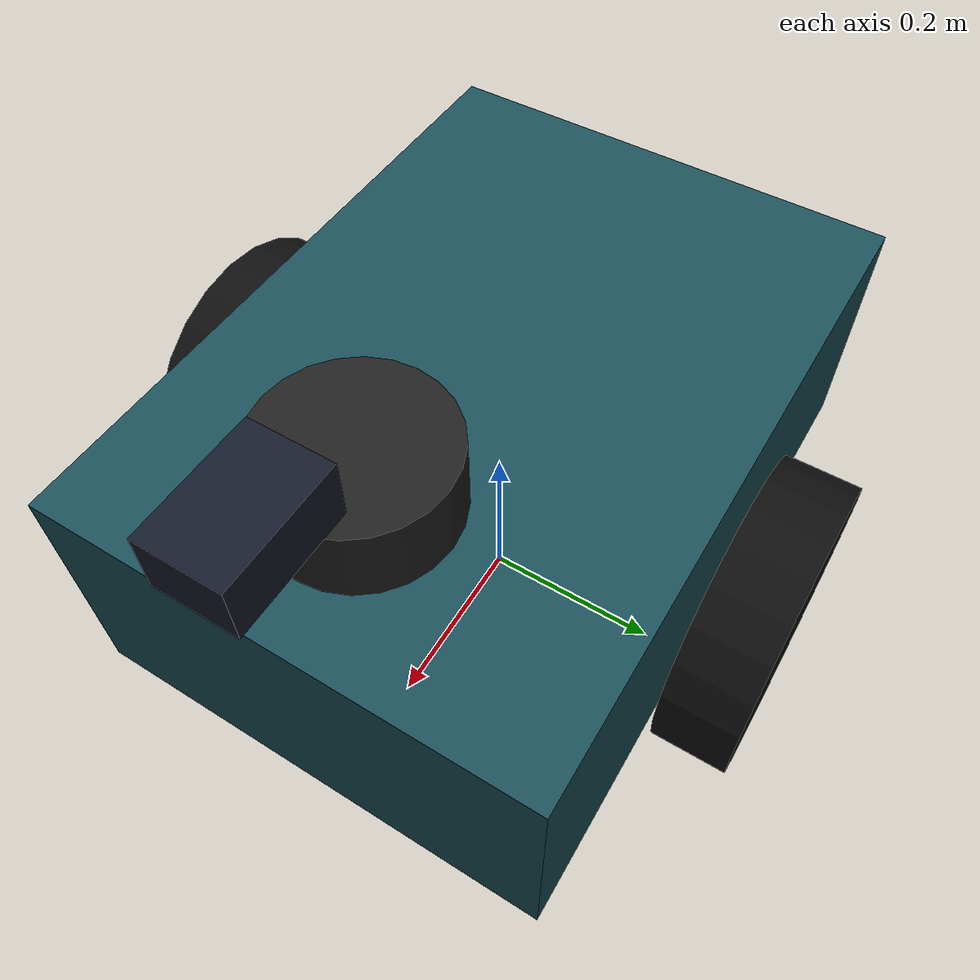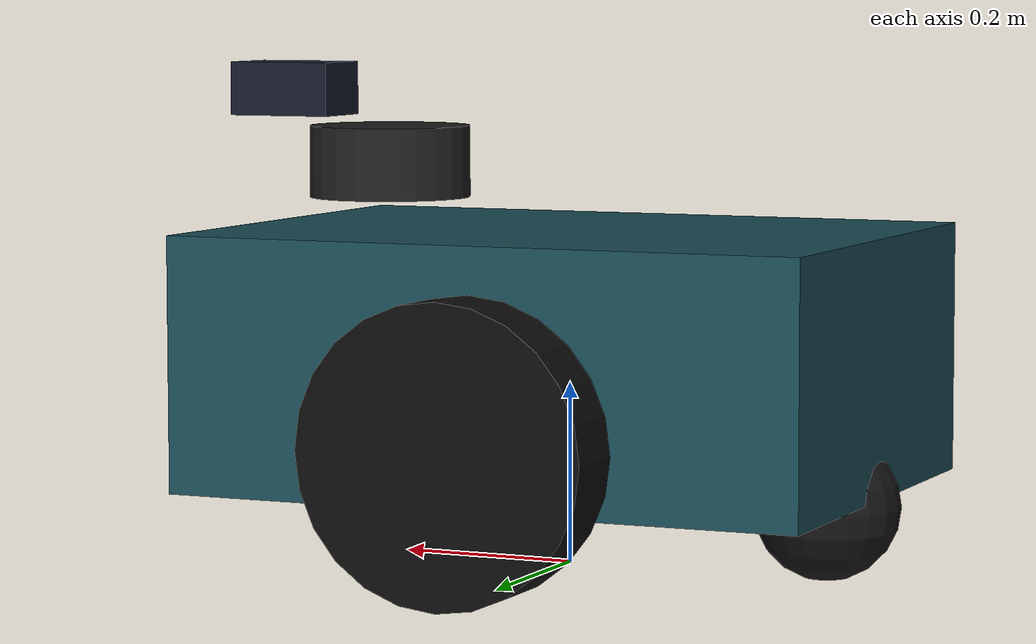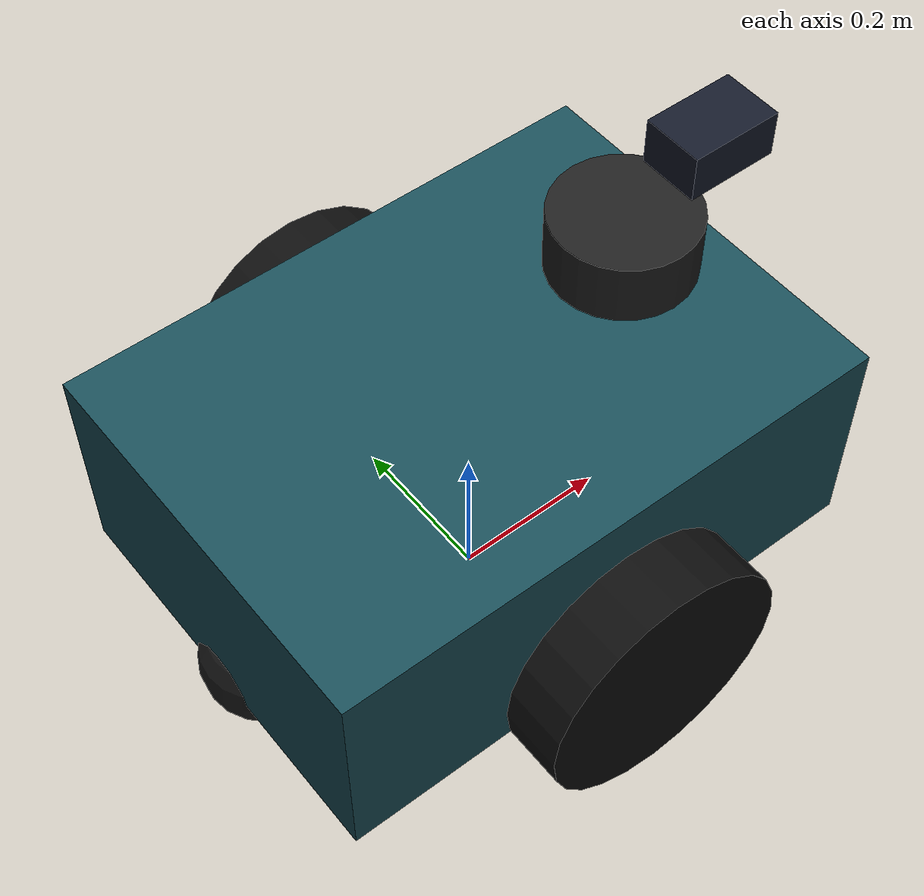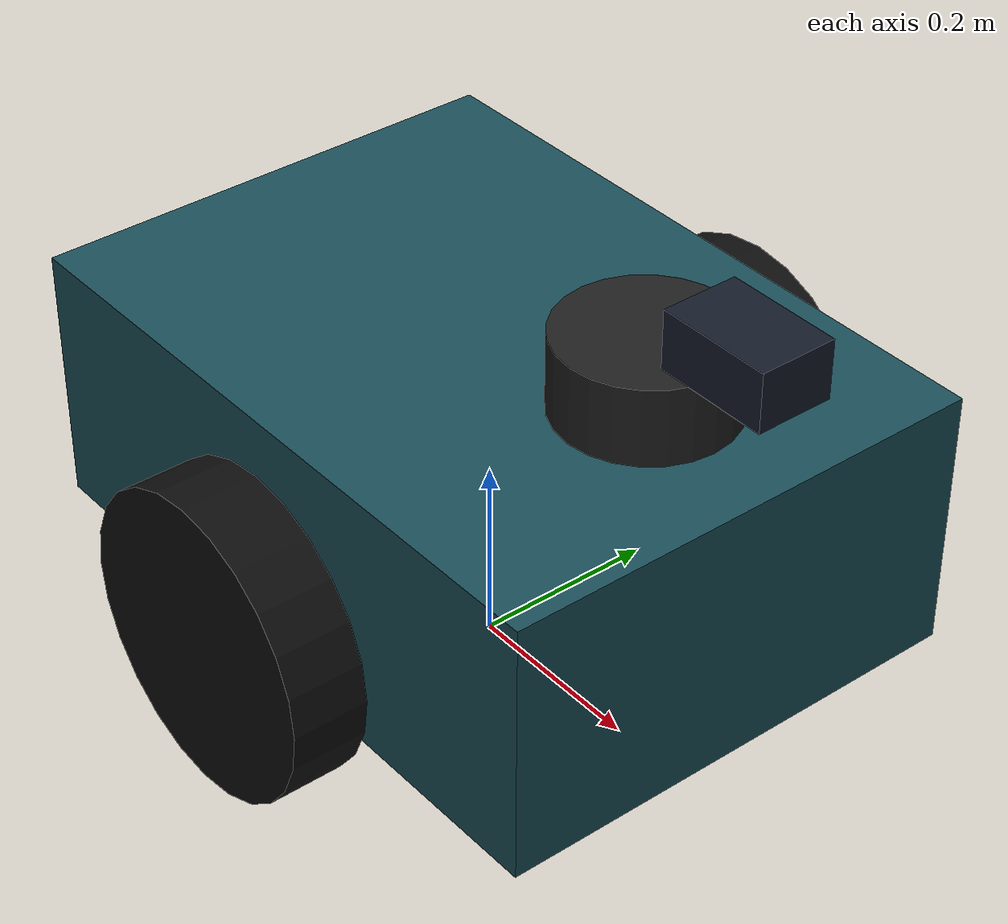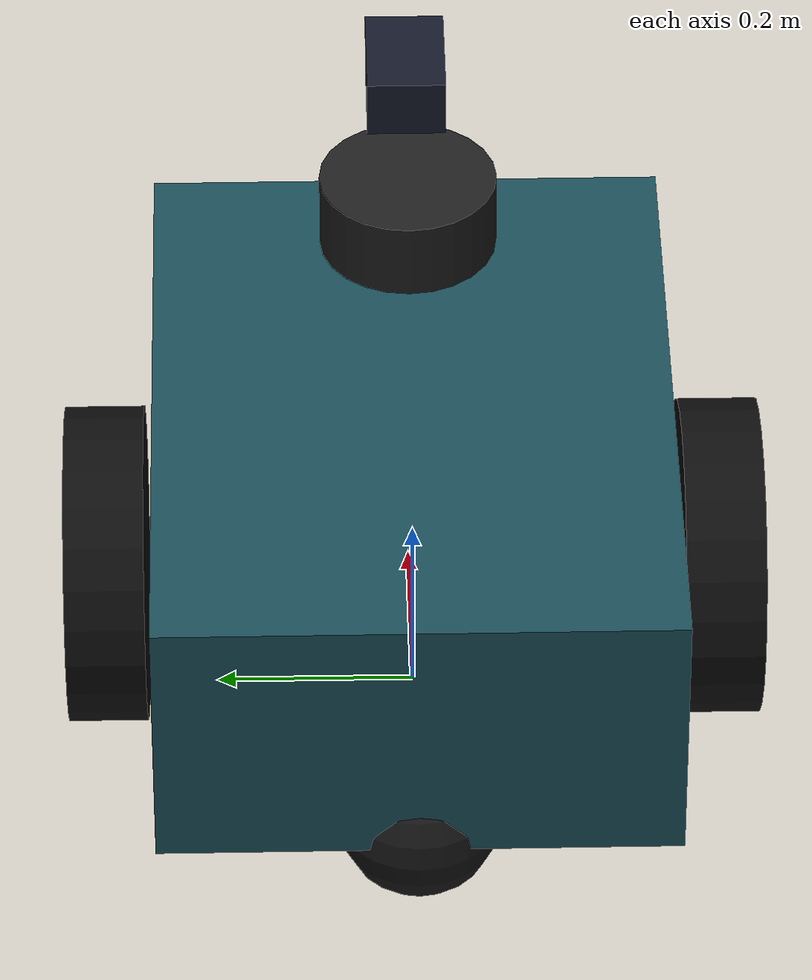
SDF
<?xml version="1.0"?>
<sdf version="1.10">
  <model name="reliability_amr">
    <self_collide>false</self_collide>

    <link name="base_link">
      <pose>0 0 0.23 0 0 0</pose>
      <inertial>
        <mass>18.0</mass>
        <inertia>
          <ixx>0.42</ixx>
          <ixy>0.0</ixy>
          <ixz>0.0</ixz>
          <iyy>0.56</iyy>
          <iyz>0.0</iyz>
          <izz>0.78</izz>
        </inertia>
      </inertial>
      <collision name="base_collision">
        <geometry>
          <box>
            <size>0.72 0.52 0.28</size>
          </box>
        </geometry>
      </collision>
      <visual name="base_visual">
        <geometry>
          <box>
            <size>0.72 0.52 0.28</size>
          </box>
        </geometry>
        <material>
          <ambient>0.10 0.16 0.18 1</ambient>
          <diffuse>0.10 0.30 0.34 1</diffuse>
          <specular>0.20 0.20 0.20 1</specular>
        </material>
      </visual>
    </link>

    <link name="left_wheel">
      <pose>0 0.31 0.16 -1.57079632679 0 0</pose>
      <inertial>
        <mass>1.4</mass>
        <inertia>
          <ixx>0.012</ixx>
          <ixy>0.0</ixy>
          <ixz>0.0</ixz>
          <iyy>0.012</iyy>
          <iyz>0.0</iyz>
          <izz>0.018</izz>
        </inertia>
      </inertial>
      <collision name="left_wheel_collision">
        <geometry>
          <cylinder>
            <radius>0.16</radius>
            <length>0.08</length>
          </cylinder>
        </geometry>
        <surface>
          <friction>
            <ode>
              <mu>1.0</mu>
              <mu2>1.0</mu2>
            </ode>
          </friction>
        </surface>
      </collision>
      <visual name="left_wheel_visual">
        <geometry>
          <cylinder>
            <radius>0.16</radius>
            <length>0.08</length>
          </cylinder>
        </geometry>
        <material>
          <ambient>0.02 0.02 0.02 1</ambient>
          <diffuse>0.05 0.05 0.05 1</diffuse>
        </material>
      </visual>
    </link>

    <link name="right_wheel">
      <pose>0 -0.31 0.16 -1.57079632679 0 0</pose>
      <inertial>
        <mass>1.4</mass>
        <inertia>
          <ixx>0.012</ixx>
          <ixy>0.0</ixy>
          <ixz>0.0</ixz>
          <iyy>0.012</iyy>
          <iyz>0.0</iyz>
          <izz>0.018</izz>
        </inertia>
      </inertial>
      <collision name="right_wheel_collision">
        <geometry>
          <cylinder>
            <radius>0.16</radius>
            <length>0.08</length>
          </cylinder>
        </geometry>
        <surface>
          <friction>
            <ode>
              <mu>1.0</mu>
              <mu2>1.0</mu2>
            </ode>
          </friction>
        </surface>
      </collision>
      <visual name="right_wheel_visual">
        <geometry>
          <cylinder>
            <radius>0.16</radius>
            <length>0.08</length>
          </cylinder>
        </geometry>
        <material>
          <ambient>0.02 0.02 0.02 1</ambient>
          <diffuse>0.05 0.05 0.05 1</diffuse>
        </material>
      </visual>
    </link>

    <link name="caster_link">
      <pose>-0.30 0 0.08 0 0 0</pose>
      <inertial>
        <mass>0.5</mass>
        <inertia>
          <ixx>0.004</ixx>
          <ixy>0.0</ixy>
          <ixz>0.0</ixz>
          <iyy>0.004</iyy>
          <iyz>0.0</iyz>
          <izz>0.004</izz>
        </inertia>
      </inertial>
      <collision name="caster_collision">
        <geometry>
          <sphere>
            <radius>0.08</radius>
          </sphere>
        </geometry>
      </collision>
      <visual name="caster_visual">
        <geometry>
          <sphere>
            <radius>0.08</radius>
          </sphere>
        </geometry>
        <material>
          <ambient>0.03 0.03 0.03 1</ambient>
          <diffuse>0.08 0.08 0.08 1</diffuse>
        </material>
      </visual>
    </link>

    <link name="laser_link">
      <pose>0.22 0 0.44 0 0 0</pose>
      <inertial>
        <mass>0.35</mass>
        <inertia>
          <ixx>0.001</ixx>
          <ixy>0.0</ixy>
          <ixz>0.0</ixz>
          <iyy>0.001</iyy>
          <iyz>0.0</iyz>
          <izz>0.001</izz>
        </inertia>
      </inertial>
      <collision name="lidar_collision">
        <geometry>
          <cylinder>
            <radius>0.09</radius>
            <length>0.08</length>
          </cylinder>
        </geometry>
      </collision>
      <visual name="lidar_visual">
        <geometry>
          <cylinder>
            <radius>0.09</radius>
            <length>0.08</length>
          </cylinder>
        </geometry>
        <material>
          <ambient>0.05 0.05 0.05 1</ambient>
          <diffuse>0.12 0.12 0.12 1</diffuse>
        </material>
      </visual>
      <sensor name="scan" type="gpu_lidar">
        <topic>/scan</topic>
        <update_rate>12</update_rate>
        <lidar>
          <scan>
            <horizontal>
              <samples>360</samples>
              <resolution>1</resolution>
              <min_angle>-3.14159265359</min_angle>
              <max_angle>3.14159265359</max_angle>
            </horizontal>
          </scan>
          <range>
            <min>0.10</min>
            <max>8.0</max>
            <resolution>0.02</resolution>
          </range>
          <noise>
            <type>gaussian</type>
            <mean>0.0</mean>
            <stddev>0.01</stddev>
          </noise>
        </lidar>
      </sensor>
    </link>

    <link name="depth_camera_link">
      <pose>0.34 0 0.52 0 0 0</pose>
      <inertial>
        <mass>0.25</mass>
        <inertia>
          <ixx>0.001</ixx>
          <ixy>0.0</ixy>
          <ixz>0.0</ixz>
          <iyy>0.001</iyy>
          <iyz>0.0</iyz>
          <izz>0.001</izz>
        </inertia>
      </inertial>
      <collision name="depth_camera_collision">
        <geometry>
          <box>
            <size>0.12 0.08 0.06</size>
          </box>
        </geometry>
      </collision>
      <visual name="depth_camera_visual">
        <geometry>
          <box>
            <size>0.12 0.08 0.06</size>
          </box>
        </geometry>
        <material>
          <ambient>0.02 0.02 0.04 1</ambient>
          <diffuse>0.08 0.10 0.16 1</diffuse>
        </material>
      </visual>
      <sensor name="depth_camera" type="depth_camera">
        <topic>/depth_image</topic>
        <update_rate>8</update_rate>
        <camera>
          <horizontal_fov>1.0471975512</horizontal_fov>
          <image>
            <width>160</width>
            <height>120</height>
            <format>R_FLOAT32</format>
          </image>
          <clip>
            <near>0.18</near>
            <far>8.0</far>
          </clip>
        </camera>
      </sensor>
    </link>

    <joint name="left_wheel_joint" type="revolute">
      <parent>base_link</parent>
      <child>left_wheel</child>
      <axis>
        <xyz>0 0 1</xyz>
        <limit>
          <lower>-1.79769e+308</lower>
          <upper>1.79769e+308</upper>
        </limit>
      </axis>
    </joint>

    <joint name="right_wheel_joint" type="revolute">
      <parent>base_link</parent>
      <child>right_wheel</child>
      <axis>
        <xyz>0 0 1</xyz>
        <limit>
          <lower>-1.79769e+308</lower>
          <upper>1.79769e+308</upper>
        </limit>
      </axis>
    </joint>

    <joint name="caster_joint" type="ball">
      <parent>base_link</parent>
      <child>caster_link</child>
    </joint>

    <joint name="laser_joint" type="fixed">
      <parent>base_link</parent>
      <child>laser_link</child>
    </joint>

    <joint name="depth_camera_joint" type="fixed">
      <parent>base_link</parent>
      <child>depth_camera_link</child>
    </joint>

    <plugin filename="gz-sim-diff-drive-system" name="gz::sim::systems::DiffDrive">
      <left_joint>left_wheel_joint</left_joint>
      <right_joint>right_wheel_joint</right_joint>
      <wheel_separation>0.62</wheel_separation>
      <wheel_radius>0.16</wheel_radius>
      <topic>/cmd_vel</topic>
      <odom_topic>/odom</odom_topic>
      <tf_topic>/tf</tf_topic>
      <frame_id>odom</frame_id>
      <child_frame_id>base_link</child_frame_id>
      <odom_publish_frequency>30</odom_publish_frequency>
      <max_linear_velocity>0.55</max_linear_velocity>
      <min_linear_velocity>-0.20</min_linear_velocity>
      <max_angular_velocity>1.2</max_angular_velocity>
      <min_angular_velocity>-1.2</min_angular_velocity>
      <max_linear_acceleration>0.8</max_linear_acceleration>
      <min_linear_acceleration>-0.8</min_linear_acceleration>
      <max_angular_acceleration>1.8</max_angular_acceleration>
      <min_angular_acceleration>-1.8</min_angular_acceleration>
    </plugin>

    <plugin filename="gz-sim-joint-state-publisher-system" name="gz::sim::systems::JointStatePublisher"/>

    <plugin filename="gz-sim-odometry-publisher-system" name="gz::sim::systems::OdometryPublisher">
      <odom_frame>odom</odom_frame>
      <robot_base_frame>base_link</robot_base_frame>
      <dimensions>2</dimensions>
      <odom_topic>/ground_truth/odom</odom_topic>
      <tf_topic>/ground_truth/tf</tf_topic>
      <odom_publish_frequency>10</odom_publish_frequency>
    </plugin>
  </model>
</sdf>
